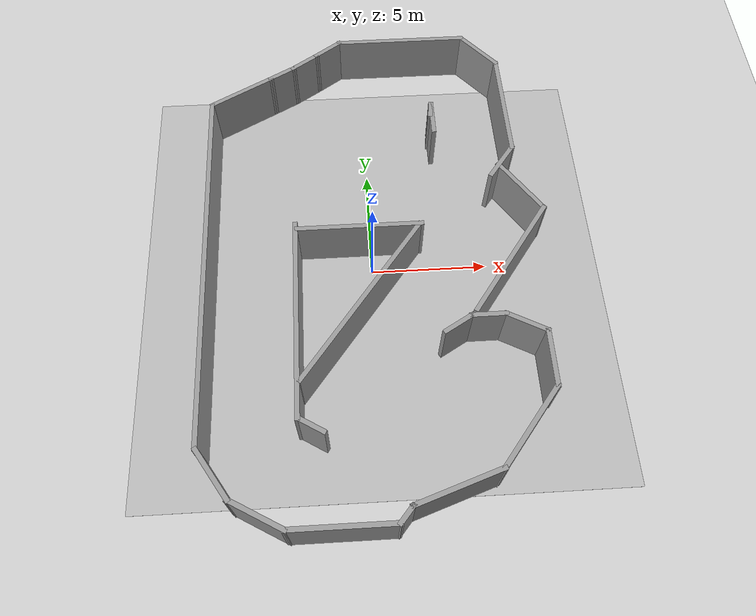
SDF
<sdf version="1.6">
 <world name="default">
  <light name="sun" type="directional">
   <pose>0 0 10 0 -0 0</pose>
   <diffuse>0.8 0.8 0.8 1</diffuse>
   <specular>0.1 0.1 0.1 1</specular>
   <attenuation>
    <range>1000</range>
    <constant>0.9</constant>
    <linear>0.01</linear>
    <quadratic>0.001</quadratic>
   </attenuation>
   <direction>-0.5 0.5 -1</direction>
  </light>
  <model name="ground_plane">
   <static>1</static>
   <link name="link">
    <collision name="collision">
     <geometry><plane><normal>0 0 1</normal><size>100 100</size></plane></geometry>
     <surface><friction><ode><mu>100</mu><mu2>50</mu2></ode></friction></surface>
    </collision>
    <visual name="visual">
     <cast_shadows>0</cast_shadows>
     <geometry><plane><normal>0 0 1</normal><size>100 100</size></plane></geometry>
     <material>
      <script><uri>file://media/materials/scripts/gazebo.material</uri><name>Gazebo/Grey</name></script>
     </material>
    </visual>
   </link>
  </model>
  <gravity>0 0 -9.8</gravity>
  <magnetic_field>6e-06 2.3e-05 -4.2e-05</magnetic_field>
  <atmosphere type="adiabatic"/>
  <physics name="default_physics" default="0" type="ode">
   <max_step_size>0.001</max_step_size>
   <real_time_factor>100</real_time_factor>
   <real_time_update_rate>0</real_time_update_rate>
  </physics>
  <scene><ambient>0.4 0.4 0.4 1</ambient><background>0.7 0.7 0.7 1</background><shadows>1</shadows></scene>
  <spherical_coordinates>
   <surface_model>EARTH_WGS84</surface_model>
   <latitude_deg>0</latitude_deg>
   <longitude_deg>0</longitude_deg>
   <elevation>0</elevation>
   <heading_deg>0</heading_deg>
  </spherical_coordinates>
  <model name="CircuitoMontmelo">
   <static>1</static>
   <link name="link">
    <collision name="collision"><geometry><box><size>20 20 0.01</size></box></geometry></collision>
    <visual name="visual">
     <cast_shadows>0</cast_shadows>
     <geometry><box><size>20 20 0.01</size></box></geometry>
     <material>
      <script>
       <uri>model://circuitoMontmelo/materials/scripts</uri>
       <uri>model://circuitoMontmelo/materials/textures</uri>
       <name>floor</name>
      </script>
     </material>
    </visual>
   </link>
   <pose>-0.004001 0.002868 0 0 -0 0</pose>
  </model>
  <model name="ParedesMontmelo">
   <link name="Wall_23">
    <pose>-4.62419 5.62975 0 0 -0 0.495133</pose>
    <velocity_decay><linear>0</linear><angular>0</angular></velocity_decay>
    <visual name="Wall_23_Visual">
     <pose>0 0 1.25 0 -0 0</pose>
     <geometry><box><size>3.24024 0.2 2.5</size></box></geometry>
     <material>
      <script><uri>file://media/materials/scripts/gazebo.material</uri><name>Gazebo/Grey</name></script>
      <ambient>0.3 0.3 0.3 1</ambient>
      <diffuse>0.7 0.7 0.7 1</diffuse>
      <specular>0.01 0.01 0.01 1</specular>
      <emissive>0 0 0 1</emissive>
     </material>
    </visual>
    <collision name="Wall_23_Collision">
     <pose>0 0 1.25 0 -0 0</pose>
     <geometry><box><size>3.24024 0.2 2.5</size></box></geometry>
     <surface>
      <friction>
       <ode><mu>1</mu><mu2>1</mu2><fdir1>0 0 0</fdir1><slip1>0</slip1><slip2>0</slip2></ode>
       <torsional>
        <coefficient>1</coefficient>
        <patch_radius>0</patch_radius>
        <surface_radius>0</surface_radius>
        <use_patch_radius>1</use_patch_radius>
        <ode><slip>0</slip></ode>
       </torsional>
      </friction>
      <bounce><restitution_coefficient>0</restitution_coefficient><threshold>1e+06</threshold></bounce>
      <contact>
       <collide_without_contact>0</collide_without_contact>
       <collide_without_contact_bitmask>1</collide_without_contact_bitmask>
       <collide_bitmask>1</collide_bitmask>
       <ode>
        <soft_cfm>0</soft_cfm>
        <soft_erp>0.2</soft_erp>
        <kp>1e+13</kp>
        <kd>1</kd>
        <max_vel>0.01</max_vel>
        <min_depth>0</min_depth>
       </ode>
       <bullet>
        <split_impulse>1</split_impulse>
        <split_impulse_penetration_threshold>-0.01</split_impulse_penetration_threshold>
        <soft_cfm>0</soft_cfm>
        <soft_erp>0.2</soft_erp>
        <kp>1e+13</kp>
        <kd>1</kd>
       </bullet>
      </contact>
     </surface>
    </collision>
   </link>
   <link name="Wall_24">
    <pose>-2.7516 6.6463 0 0 -0 0.502843</pose>
    <velocity_decay><linear>0</linear><angular>0</angular></velocity_decay>
    <visual name="Wall_24_Visual">
     <pose>0 0 1.25 0 -0 0</pose>
     <geometry><box><size>1.42122 0.2 2.5</size></box></geometry>
     <material>
      <script><uri>file://media/materials/scripts/gazebo.material</uri><name>Gazebo/Grey</name></script>
      <ambient>0.3 0.3 0.3 1</ambient>
      <diffuse>0.7 0.7 0.7 1</diffuse>
      <specular>0.01 0.01 0.01 1</specular>
      <emissive>0 0 0 1</emissive>
     </material>
    </visual>
    <collision name="Wall_24_Collision">
     <pose>0 0 1.25 0 -0 0</pose>
     <geometry><box><size>1.42122 0.2 2.5</size></box></geometry>
     <surface>
      <friction>
       <ode><mu>1</mu><mu2>1</mu2><fdir1>0 0 0</fdir1><slip1>0</slip1><slip2>0</slip2></ode>
       <torsional>
        <coefficient>1</coefficient>
        <patch_radius>0</patch_radius>
        <surface_radius>0</surface_radius>
        <use_patch_radius>1</use_patch_radius>
        <ode><slip>0</slip></ode>
       </torsional>
      </friction>
      <bounce><restitution_coefficient>0</restitution_coefficient><threshold>1e+06</threshold></bounce>
      <contact>
       <collide_without_contact>0</collide_without_contact>
       <collide_without_contact_bitmask>1</collide_without_contact_bitmask>
       <collide_bitmask>1</collide_bitmask>
       <ode>
        <soft_cfm>0</soft_cfm>
        <soft_erp>0.2</soft_erp>
        <kp>1e+13</kp>
        <kd>1</kd>
        <max_vel>0.01</max_vel>
        <min_depth>0</min_depth>
       </ode>
       <bullet>
        <split_impulse>1</split_impulse>
        <split_impulse_penetration_threshold>-0.01</split_impulse_penetration_threshold>
        <soft_cfm>0</soft_cfm>
        <soft_erp>0.2</soft_erp>
        <kp>1e+13</kp>
        <kd>1</kd>
       </bullet>
      </contact>
     </surface>
    </collision>
   </link>
   <link name="Wall_25">
    <pose>-1.6637 7.30616 0 0 -0 0.584242</pose>
    <velocity_decay><linear>0</linear><angular>0</angular></velocity_decay>
    <visual name="Wall_25_Visual">
     <pose>0 0 1.25 0 -0 0</pose>
     <geometry><box><size>1.52565 0.2 2.5</size></box></geometry>
     <material>
      <script><uri>file://media/materials/scripts/gazebo.material</uri><name>Gazebo/Grey</name></script>
      <ambient>0.3 0.3 0.3 1</ambient>
      <diffuse>0.7 0.7 0.7 1</diffuse>
      <specular>0.01 0.01 0.01 1</specular>
      <emissive>0 0 0 1</emissive>
     </material>
    </visual>
    <collision name="Wall_25_Collision">
     <pose>0 0 1.25 0 -0 0</pose>
     <geometry><box><size>1.52565 0.2 2.5</size></box></geometry>
     <surface>
      <friction>
       <ode><mu>1</mu><mu2>1</mu2><fdir1>0 0 0</fdir1><slip1>0</slip1><slip2>0</slip2></ode>
       <torsional>
        <coefficient>1</coefficient>
        <patch_radius>0</patch_radius>
        <surface_radius>0</surface_radius>
        <use_patch_radius>1</use_patch_radius>
        <ode><slip>0</slip></ode>
       </torsional>
      </friction>
      <bounce><restitution_coefficient>0</restitution_coefficient><threshold>1e+06</threshold></bounce>
      <contact>
       <collide_without_contact>0</collide_without_contact>
       <collide_without_contact_bitmask>1</collide_without_contact_bitmask>
       <collide_bitmask>1</collide_bitmask>
       <ode>
        <soft_cfm>0</soft_cfm>
        <soft_erp>0.2</soft_erp>
        <kp>1e+13</kp>
        <kd>1</kd>
        <max_vel>0.01</max_vel>
        <min_depth>0</min_depth>
       </ode>
       <bullet>
        <split_impulse>1</split_impulse>
        <split_impulse_penetration_threshold>-0.01</split_impulse_penetration_threshold>
        <soft_cfm>0</soft_cfm>
        <soft_erp>0.2</soft_erp>
        <kp>1e+13</kp>
        <kd>1</kd>
       </bullet>
      </contact>
     </surface>
    </collision>
   </link>
   <link name="Wall_26">
    <pose>-0.544373 8.05974 0 0 -0 0.600567</pose>
    <velocity_decay><linear>0</linear><angular>0</angular></velocity_decay>
    <visual name="Wall_26_Visual">
     <pose>0 0 1.25 0 -0 0</pose>
     <geometry><box><size>1.57316 0.2 2.5</size></box></geometry>
     <material>
      <script><uri>file://media/materials/scripts/gazebo.material</uri><name>Gazebo/Grey</name></script>
      <ambient>0.3 0.3 0.3 1</ambient>
      <diffuse>0.7 0.7 0.7 1</diffuse>
      <specular>0.01 0.01 0.01 1</specular>
      <emissive>0 0 0 1</emissive>
     </material>
    </visual>
    <collision name="Wall_26_Collision">
     <pose>0 0 1.25 0 -0 0</pose>
     <geometry><box><size>1.57316 0.2 2.5</size></box></geometry>
     <surface>
      <friction>
       <ode><mu>1</mu><mu2>1</mu2><fdir1>0 0 0</fdir1><slip1>0</slip1><slip2>0</slip2></ode>
       <torsional>
        <coefficient>1</coefficient>
        <patch_radius>0</patch_radius>
        <surface_radius>0</surface_radius>
        <use_patch_radius>1</use_patch_radius>
        <ode><slip>0</slip></ode>
       </torsional>
      </friction>
      <bounce><restitution_coefficient>0</restitution_coefficient><threshold>1e+06</threshold></bounce>
      <contact>
       <collide_without_contact>0</collide_without_contact>
       <collide_without_contact_bitmask>1</collide_without_contact_bitmask>
       <collide_bitmask>1</collide_bitmask>
       <ode>
        <soft_cfm>0</soft_cfm>
        <soft_erp>0.2</soft_erp>
        <kp>1e+13</kp>
        <kd>1</kd>
        <max_vel>0.01</max_vel>
        <min_depth>0</min_depth>
       </ode>
       <bullet>
        <split_impulse>1</split_impulse>
        <split_impulse_penetration_threshold>-0.01</split_impulse_penetration_threshold>
        <soft_cfm>0</soft_cfm>
        <soft_erp>0.2</soft_erp>
        <kp>1e+13</kp>
        <kd>1</kd>
       </bullet>
      </contact>
     </surface>
    </collision>
   </link>
   <link name="Wall_27">
    <pose>2.99386 8.44774 0 0 -0 0</pose>
    <velocity_decay><linear>0</linear><angular>0</angular></velocity_decay>
    <visual name="Wall_27_Visual">
     <pose>0 0 1.25 0 -0 0</pose>
     <geometry><box><size>6.14359 0.2 2.5</size></box></geometry>
     <material>
      <script><uri>file://media/materials/scripts/gazebo.material</uri><name>Gazebo/Grey</name></script>
      <ambient>0.3 0.3 0.3 1</ambient>
      <diffuse>0.7 0.7 0.7 1</diffuse>
      <specular>0.01 0.01 0.01 1</specular>
      <emissive>0 0 0 1</emissive>
     </material>
    </visual>
    <collision name="Wall_27_Collision">
     <pose>0 0 1.25 0 -0 0</pose>
     <geometry><box><size>6.14359 0.2 2.5</size></box></geometry>
     <surface>
      <friction>
       <ode><mu>1</mu><mu2>1</mu2><fdir1>0 0 0</fdir1><slip1>0</slip1><slip2>0</slip2></ode>
       <torsional>
        <coefficient>1</coefficient>
        <patch_radius>0</patch_radius>
        <surface_radius>0</surface_radius>
        <use_patch_radius>1</use_patch_radius>
        <ode><slip>0</slip></ode>
       </torsional>
      </friction>
      <bounce><restitution_coefficient>0</restitution_coefficient><threshold>1e+06</threshold></bounce>
      <contact>
       <collide_without_contact>0</collide_without_contact>
       <collide_without_contact_bitmask>1</collide_without_contact_bitmask>
       <collide_bitmask>1</collide_bitmask>
       <ode>
        <soft_cfm>0</soft_cfm>
        <soft_erp>0.2</soft_erp>
        <kp>1e+13</kp>
        <kd>1</kd>
        <max_vel>0.01</max_vel>
        <min_depth>0</min_depth>
       </ode>
       <bullet>
        <split_impulse>1</split_impulse>
        <split_impulse_penetration_threshold>-0.01</split_impulse_penetration_threshold>
        <soft_cfm>0</soft_cfm>
        <soft_erp>0.2</soft_erp>
        <kp>1e+13</kp>
        <kd>1</kd>
       </bullet>
      </contact>
     </surface>
    </collision>
   </link>
   <link name="Wall_29">
    <pose>6.74399 7.56327 0 0 0 -0.855053</pose>
    <velocity_decay><linear>0</linear><angular>0</angular></velocity_decay>
    <visual name="Wall_29_Visual">
     <pose>0 0 1.25 0 -0 0</pose>
     <geometry><box><size>2.35664 0.2 2.5</size></box></geometry>
     <material>
      <script><uri>file://media/materials/scripts/gazebo.material</uri><name>Gazebo/Grey</name></script>
      <ambient>0.3 0.3 0.3 1</ambient>
      <diffuse>0.7 0.7 0.7 1</diffuse>
      <specular>0.01 0.01 0.01 1</specular>
      <emissive>0 0 0 1</emissive>
     </material>
    </visual>
    <collision name="Wall_29_Collision">
     <pose>0 0 1.25 0 -0 0</pose>
     <geometry><box><size>2.35664 0.2 2.5</size></box></geometry>
     <surface>
      <friction>
       <ode><mu>1</mu><mu2>1</mu2><fdir1>0 0 0</fdir1><slip1>0</slip1><slip2>0</slip2></ode>
       <torsional>
        <coefficient>1</coefficient>
        <patch_radius>0</patch_radius>
        <surface_radius>0</surface_radius>
        <use_patch_radius>1</use_patch_radius>
        <ode><slip>0</slip></ode>
       </torsional>
      </friction>
      <bounce><restitution_coefficient>0</restitution_coefficient><threshold>1e+06</threshold></bounce>
      <contact>
       <collide_without_contact>0</collide_without_contact>
       <collide_without_contact_bitmask>1</collide_without_contact_bitmask>
       <collide_bitmask>1</collide_bitmask>
       <ode>
        <soft_cfm>0</soft_cfm>
        <soft_erp>0.2</soft_erp>
        <kp>1e+13</kp>
        <kd>1</kd>
        <max_vel>0.01</max_vel>
        <min_depth>0</min_depth>
       </ode>
       <bullet>
        <split_impulse>1</split_impulse>
        <split_impulse_penetration_threshold>-0.01</split_impulse_penetration_threshold>
        <soft_cfm>0</soft_cfm>
        <soft_erp>0.2</soft_erp>
        <kp>1e+13</kp>
        <kd>1</kd>
       </bullet>
      </contact>
     </surface>
    </collision>
   </link>
   <link name="Wall_30">
    <pose>7.49224 4.243 0 0 0 -1.55457</pose>
    <velocity_decay><linear>0</linear><angular>0</angular></velocity_decay>
    <visual name="Wall_30_Visual">
     <pose>0 0 1.25 0 -0 0</pose>
     <geometry><box><size>5.2138 0.2 2.5</size></box></geometry>
     <material>
      <script><uri>file://media/materials/scripts/gazebo.material</uri><name>Gazebo/Grey</name></script>
      <ambient>0.3 0.3 0.3 1</ambient>
      <diffuse>0.7 0.7 0.7 1</diffuse>
      <specular>0.01 0.01 0.01 1</specular>
      <emissive>0 0 0 1</emissive>
     </material>
    </visual>
    <collision name="Wall_30_Collision">
     <pose>0 0 1.25 0 -0 0</pose>
     <geometry><box><size>5.2138 0.2 2.5</size></box></geometry>
     <surface>
      <friction>
       <ode><mu>1</mu><mu2>1</mu2><fdir1>0 0 0</fdir1><slip1>0</slip1><slip2>0</slip2></ode>
       <torsional>
        <coefficient>1</coefficient>
        <patch_radius>0</patch_radius>
        <surface_radius>0</surface_radius>
        <use_patch_radius>1</use_patch_radius>
        <ode><slip>0</slip></ode>
       </torsional>
      </friction>
      <bounce><restitution_coefficient>0</restitution_coefficient><threshold>1e+06</threshold></bounce>
      <contact>
       <collide_without_contact>0</collide_without_contact>
       <collide_without_contact_bitmask>1</collide_without_contact_bitmask>
       <collide_bitmask>1</collide_bitmask>
       <ode>
        <soft_cfm>0</soft_cfm>
        <soft_erp>0.2</soft_erp>
        <kp>1e+13</kp>
        <kd>1</kd>
        <max_vel>0.01</max_vel>
        <min_depth>0</min_depth>
       </ode>
       <bullet>
        <split_impulse>1</split_impulse>
        <split_impulse_penetration_threshold>-0.01</split_impulse_penetration_threshold>
        <soft_cfm>0</soft_cfm>
        <soft_erp>0.2</soft_erp>
        <kp>1e+13</kp>
        <kd>1</kd>
       </bullet>
      </contact>
     </surface>
    </collision>
   </link>
   <link name="Wall_31">
    <pose>6.98355 1.02047 0 0 0 -2.2253</pose>
    <velocity_decay><linear>0</linear><angular>0</angular></velocity_decay>
    <visual name="Wall_31_Visual">
     <pose>0 0 1.25 0 -0 0</pose>
     <geometry><box><size>2.00489 0.2 2.5</size></box></geometry>
     <material>
      <script><uri>file://media/materials/scripts/gazebo.material</uri><name>Gazebo/Grey</name></script>
      <ambient>0.3 0.3 0.3 1</ambient>
      <diffuse>0.7 0.7 0.7 1</diffuse>
      <specular>0.01 0.01 0.01 1</specular>
      <emissive>0 0 0 1</emissive>
     </material>
    </visual>
    <collision name="Wall_31_Collision">
     <pose>0 0 1.25 0 -0 0</pose>
     <geometry><box><size>2.00489 0.2 2.5</size></box></geometry>
     <surface>
      <friction>
       <ode><mu>1</mu><mu2>1</mu2><fdir1>0 0 0</fdir1><slip1>0</slip1><slip2>0</slip2></ode>
       <torsional>
        <coefficient>1</coefficient>
        <patch_radius>0</patch_radius>
        <surface_radius>0</surface_radius>
        <use_patch_radius>1</use_patch_radius>
        <ode><slip>0</slip></ode>
       </torsional>
      </friction>
      <bounce><restitution_coefficient>0</restitution_coefficient><threshold>1e+06</threshold></bounce>
      <contact>
       <collide_without_contact>0</collide_without_contact>
       <collide_without_contact_bitmask>1</collide_without_contact_bitmask>
       <collide_bitmask>1</collide_bitmask>
       <ode>
        <soft_cfm>0</soft_cfm>
        <soft_erp>0.2</soft_erp>
        <kp>1e+13</kp>
        <kd>1</kd>
        <max_vel>0.01</max_vel>
        <min_depth>0</min_depth>
       </ode>
       <bullet>
        <split_impulse>1</split_impulse>
        <split_impulse_penetration_threshold>-0.01</split_impulse_penetration_threshold>
        <soft_cfm>0</soft_cfm>
        <soft_erp>0.2</soft_erp>
        <kp>1e+13</kp>
        <kd>1</kd>
       </bullet>
      </contact>
     </surface>
    </collision>
   </link>
   <link name="Wall_33">
    <pose>-5.34753 -12.147 0 0 0 -0.992894</pose>
    <velocity_decay><linear>0</linear><angular>0</angular></velocity_decay>
    <visual name="Wall_33_Visual">
     <pose>0 0 1.25 0 -0 0</pose>
     <geometry><box><size>2.43436 0.2 2.5</size></box></geometry>
     <material>
      <script><uri>file://media/materials/scripts/gazebo.material</uri><name>Gazebo/Grey</name></script>
      <ambient>0.3 0.3 0.3 1</ambient>
      <diffuse>0.7 0.7 0.7 1</diffuse>
      <specular>0.01 0.01 0.01 1</specular>
      <emissive>0 0 0 1</emissive>
     </material>
    </visual>
    <collision name="Wall_33_Collision">
     <pose>0 0 1.25 0 -0 0</pose>
     <geometry><box><size>2.43436 0.2 2.5</size></box></geometry>
     <surface>
      <friction>
       <ode><mu>1</mu><mu2>1</mu2><fdir1>0 0 0</fdir1><slip1>0</slip1><slip2>0</slip2></ode>
       <torsional>
        <coefficient>1</coefficient>
        <patch_radius>0</patch_radius>
        <surface_radius>0</surface_radius>
        <use_patch_radius>1</use_patch_radius>
        <ode><slip>0</slip></ode>
       </torsional>
      </friction>
      <bounce><restitution_coefficient>0</restitution_coefficient><threshold>1e+06</threshold></bounce>
      <contact>
       <collide_without_contact>0</collide_without_contact>
       <collide_without_contact_bitmask>1</collide_without_contact_bitmask>
       <collide_bitmask>1</collide_bitmask>
       <ode>
        <soft_cfm>0</soft_cfm>
        <soft_erp>0.2</soft_erp>
        <kp>1e+13</kp>
        <kd>1</kd>
        <max_vel>0.01</max_vel>
        <min_depth>0</min_depth>
       </ode>
       <bullet>
        <split_impulse>1</split_impulse>
        <split_impulse_penetration_threshold>-0.01</split_impulse_penetration_threshold>
        <soft_cfm>0</soft_cfm>
        <soft_erp>0.2</soft_erp>
        <kp>1e+13</kp>
        <kd>1</kd>
       </bullet>
      </contact>
     </surface>
    </collision>
   </link>
   <link name="Wall_34">
    <pose>-3.72012 -13.6524 0 0 0 -0.510488</pose>
    <velocity_decay><linear>0</linear><angular>0</angular></velocity_decay>
    <visual name="Wall_34_Visual">
     <pose>0 0 1.25 0 -0 0</pose>
     <geometry><box><size>2.53152 0.2 2.5</size></box></geometry>
     <material>
      <script><uri>file://media/materials/scripts/gazebo.material</uri><name>Gazebo/Grey</name></script>
      <ambient>0.3 0.3 0.3 1</ambient>
      <diffuse>0.7 0.7 0.7 1</diffuse>
      <specular>0.01 0.01 0.01 1</specular>
      <emissive>0 0 0 1</emissive>
     </material>
    </visual>
    <collision name="Wall_34_Collision">
     <pose>0 0 1.25 0 -0 0</pose>
     <geometry><box><size>2.53152 0.2 2.5</size></box></geometry>
     <surface>
      <friction>
       <ode><mu>1</mu><mu2>1</mu2><fdir1>0 0 0</fdir1><slip1>0</slip1><slip2>0</slip2></ode>
       <torsional>
        <coefficient>1</coefficient>
        <patch_radius>0</patch_radius>
        <surface_radius>0</surface_radius>
        <use_patch_radius>1</use_patch_radius>
        <ode><slip>0</slip></ode>
       </torsional>
      </friction>
      <bounce><restitution_coefficient>0</restitution_coefficient><threshold>1e+06</threshold></bounce>
      <contact>
       <collide_without_contact>0</collide_without_contact>
       <collide_without_contact_bitmask>1</collide_without_contact_bitmask>
       <collide_bitmask>1</collide_bitmask>
       <ode>
        <soft_cfm>0</soft_cfm>
        <soft_erp>0.2</soft_erp>
        <kp>1e+13</kp>
        <kd>1</kd>
        <max_vel>0.01</max_vel>
        <min_depth>0</min_depth>
       </ode>
       <bullet>
        <split_impulse>1</split_impulse>
        <split_impulse_penetration_threshold>-0.01</split_impulse_penetration_threshold>
        <soft_cfm>0</soft_cfm>
        <soft_erp>0.2</soft_erp>
        <kp>1e+13</kp>
        <kd>1</kd>
       </bullet>
      </contact>
     </surface>
    </collision>
   </link>
   <link name="Wall_35">
    <pose>-0.668718 -14.222 0 0 -0 0</pose>
    <velocity_decay><linear>0</linear><angular>0</angular></velocity_decay>
    <visual name="Wall_35_Visual">
     <pose>0 0 1.25 0 -0 0</pose>
     <geometry><box><size>4.26853 0.2 2.5</size></box></geometry>
     <material>
      <script><uri>file://media/materials/scripts/gazebo.material</uri><name>Gazebo/Grey</name></script>
      <ambient>0.3 0.3 0.3 1</ambient>
      <diffuse>0.7 0.7 0.7 1</diffuse>
      <specular>0.01 0.01 0.01 1</specular>
      <emissive>0 0 0 1</emissive>
     </material>
    </visual>
    <collision name="Wall_35_Collision">
     <pose>0 0 1.25 0 -0 0</pose>
     <geometry><box><size>4.26853 0.2 2.5</size></box></geometry>
     <surface>
      <friction>
       <ode><mu>1</mu><mu2>1</mu2><fdir1>0 0 0</fdir1><slip1>0</slip1><slip2>0</slip2></ode>
       <torsional>
        <coefficient>1</coefficient>
        <patch_radius>0</patch_radius>
        <surface_radius>0</surface_radius>
        <use_patch_radius>1</use_patch_radius>
        <ode><slip>0</slip></ode>
       </torsional>
      </friction>
      <bounce><restitution_coefficient>0</restitution_coefficient><threshold>1e+06</threshold></bounce>
      <contact>
       <collide_without_contact>0</collide_without_contact>
       <collide_without_contact_bitmask>1</collide_without_contact_bitmask>
       <collide_bitmask>1</collide_bitmask>
       <ode>
        <soft_cfm>0</soft_cfm>
        <soft_erp>0.2</soft_erp>
        <kp>1e+13</kp>
        <kd>1</kd>
        <max_vel>0.01</max_vel>
        <min_depth>0</min_depth>
       </ode>
       <bullet>
        <split_impulse>1</split_impulse>
        <split_impulse_penetration_threshold>-0.01</split_impulse_penetration_threshold>
        <soft_cfm>0</soft_cfm>
        <soft_erp>0.2</soft_erp>
        <kp>1e+13</kp>
        <kd>1</kd>
       </bullet>
      </contact>
     </surface>
    </collision>
   </link>
   <link name="Wall_36">
    <pose>1.60966 -13.9372 0 0 -0 0.86217</pose>
    <velocity_decay><linear>0</linear><angular>0</angular></velocity_decay>
    <visual name="Wall_36_Visual">
     <pose>0 0 1.25 0 -0 0</pose>
     <geometry><box><size>0.9502 0.2 2.5</size></box></geometry>
     <material>
      <script><uri>file://media/materials/scripts/gazebo.material</uri><name>Gazebo/Grey</name></script>
      <ambient>0.3 0.3 0.3 1</ambient>
      <diffuse>0.7 0.7 0.7 1</diffuse>
      <specular>0.01 0.01 0.01 1</specular>
      <emissive>0 0 0 1</emissive>
     </material>
    </visual>
    <collision name="Wall_36_Collision">
     <pose>0 0 1.25 0 -0 0</pose>
     <geometry><box><size>0.9502 0.2 2.5</size></box></geometry>
     <surface>
      <friction>
       <ode><mu>1</mu><mu2>1</mu2><fdir1>0 0 0</fdir1><slip1>0</slip1><slip2>0</slip2></ode>
       <torsional>
        <coefficient>1</coefficient>
        <patch_radius>0</patch_radius>
        <surface_radius>0</surface_radius>
        <use_patch_radius>1</use_patch_radius>
        <ode><slip>0</slip></ode>
       </torsional>
      </friction>
      <bounce><restitution_coefficient>0</restitution_coefficient><threshold>1e+06</threshold></bounce>
      <contact>
       <collide_without_contact>0</collide_without_contact>
       <collide_without_contact_bitmask>1</collide_without_contact_bitmask>
       <collide_bitmask>1</collide_bitmask>
       <ode>
        <soft_cfm>0</soft_cfm>
        <soft_erp>0.2</soft_erp>
        <kp>1e+13</kp>
        <kd>1</kd>
        <max_vel>0.01</max_vel>
        <min_depth>0</min_depth>
       </ode>
       <bullet>
        <split_impulse>1</split_impulse>
        <split_impulse_penetration_threshold>-0.01</split_impulse_penetration_threshold>
        <soft_cfm>0</soft_cfm>
        <soft_erp>0.2</soft_erp>
        <kp>1e+13</kp>
        <kd>1</kd>
       </bullet>
      </contact>
     </surface>
    </collision>
   </link>
   <link name="Wall_37">
    <pose>3.56255 -13.0828 0 0 -0 0.321751</pose>
    <velocity_decay><linear>0</linear><angular>0</angular></velocity_decay>
    <visual name="Wall_37_Visual">
     <pose>0 0 1.25 0 -0 0</pose>
     <geometry><box><size>3.80243 0.2 2.5</size></box></geometry>
     <material>
      <script><uri>file://media/materials/scripts/gazebo.material</uri><name>Gazebo/Grey</name></script>
      <ambient>0.3 0.3 0.3 1</ambient>
      <diffuse>0.7 0.7 0.7 1</diffuse>
      <specular>0.01 0.01 0.01 1</specular>
      <emissive>0 0 0 1</emissive>
     </material>
    </visual>
    <collision name="Wall_37_Collision">
     <pose>0 0 1.25 0 -0 0</pose>
     <geometry><box><size>3.80243 0.2 2.5</size></box></geometry>
     <surface>
      <friction>
       <ode><mu>1</mu><mu2>1</mu2><fdir1>0 0 0</fdir1><slip1>0</slip1><slip2>0</slip2></ode>
       <torsional>
        <coefficient>1</coefficient>
        <patch_radius>0</patch_radius>
        <surface_radius>0</surface_radius>
        <use_patch_radius>1</use_patch_radius>
        <ode><slip>0</slip></ode>
       </torsional>
      </friction>
      <bounce><restitution_coefficient>0</restitution_coefficient><threshold>1e+06</threshold></bounce>
      <contact>
       <collide_without_contact>0</collide_without_contact>
       <collide_without_contact_bitmask>1</collide_without_contact_bitmask>
       <collide_bitmask>1</collide_bitmask>
       <ode>
        <soft_cfm>0</soft_cfm>
        <soft_erp>0.2</soft_erp>
        <kp>1e+13</kp>
        <kd>1</kd>
        <max_vel>0.01</max_vel>
        <min_depth>0</min_depth>
       </ode>
       <bullet>
        <split_impulse>1</split_impulse>
        <split_impulse_penetration_threshold>-0.01</split_impulse_penetration_threshold>
        <soft_cfm>0</soft_cfm>
        <soft_erp>0.2</soft_erp>
        <kp>1e+13</kp>
        <kd>1</kd>
       </bullet>
      </contact>
     </surface>
    </collision>
   </link>
   <link name="Wall_38">
    <pose>6.4919 -11.0078 0 0 -0 0.889498</pose>
    <velocity_decay><linear>0</linear><angular>0</angular></velocity_decay>
    <visual name="Wall_38_Visual">
     <pose>0 0 1.25 0 -0 0</pose>
     <geometry><box><size>4.07601 0.2 2.5</size></box></geometry>
     <material>
      <script><uri>file://media/materials/scripts/gazebo.material</uri><name>Gazebo/Grey</name></script>
      <ambient>0.3 0.3 0.3 1</ambient>
      <diffuse>0.7 0.7 0.7 1</diffuse>
      <specular>0.01 0.01 0.01 1</specular>
      <emissive>0 0 0 1</emissive>
     </material>
    </visual>
    <collision name="Wall_38_Collision">
     <pose>0 0 1.25 0 -0 0</pose>
     <geometry><box><size>4.07601 0.2 2.5</size></box></geometry>
     <surface>
      <friction>
       <ode><mu>1</mu><mu2>1</mu2><fdir1>0 0 0</fdir1><slip1>0</slip1><slip2>0</slip2></ode>
       <torsional>
        <coefficient>1</coefficient>
        <patch_radius>0</patch_radius>
        <surface_radius>0</surface_radius>
        <use_patch_radius>1</use_patch_radius>
        <ode><slip>0</slip></ode>
       </torsional>
      </friction>
      <bounce><restitution_coefficient>0</restitution_coefficient><threshold>1e+06</threshold></bounce>
      <contact>
       <collide_without_contact>0</collide_without_contact>
       <collide_without_contact_bitmask>1</collide_without_contact_bitmask>
       <collide_bitmask>1</collide_bitmask>
       <ode>
        <soft_cfm>0</soft_cfm>
        <soft_erp>0.2</soft_erp>
        <kp>1e+13</kp>
        <kd>1</kd>
        <max_vel>0.01</max_vel>
        <min_depth>0</min_depth>
       </ode>
       <bullet>
        <split_impulse>1</split_impulse>
        <split_impulse_penetration_threshold>-0.01</split_impulse_penetration_threshold>
        <soft_cfm>0</soft_cfm>
        <soft_erp>0.2</soft_erp>
        <kp>1e+13</kp>
        <kd>1</kd>
       </bullet>
      </contact>
     </surface>
    </collision>
   </link>
   <link name="Wall_39">
    <pose>7.71246 -8.36327 0 0 -0 1.5708</pose>
    <velocity_decay><linear>0</linear><angular>0</angular></velocity_decay>
    <visual name="Wall_39_Visual">
     <pose>0 0 1.25 0 -0 0</pose>
     <geometry><box><size>2.47838 0.2 2.5</size></box></geometry>
     <material>
      <script><uri>file://media/materials/scripts/gazebo.material</uri><name>Gazebo/Grey</name></script>
      <ambient>0.3 0.3 0.3 1</ambient>
      <diffuse>0.7 0.7 0.7 1</diffuse>
      <specular>0.01 0.01 0.01 1</specular>
      <emissive>0 0 0 1</emissive>
     </material>
    </visual>
    <collision name="Wall_39_Collision">
     <pose>0 0 1.25 0 -0 0</pose>
     <geometry><box><size>2.47838 0.2 2.5</size></box></geometry>
     <surface>
      <friction>
       <ode><mu>1</mu><mu2>1</mu2><fdir1>0 0 0</fdir1><slip1>0</slip1><slip2>0</slip2></ode>
       <torsional>
        <coefficient>1</coefficient>
        <patch_radius>0</patch_radius>
        <surface_radius>0</surface_radius>
        <use_patch_radius>1</use_patch_radius>
        <ode><slip>0</slip></ode>
       </torsional>
      </friction>
      <bounce><restitution_coefficient>0</restitution_coefficient><threshold>1e+06</threshold></bounce>
      <contact>
       <collide_without_contact>0</collide_without_contact>
       <collide_without_contact_bitmask>1</collide_without_contact_bitmask>
       <collide_bitmask>1</collide_bitmask>
       <ode>
        <soft_cfm>0</soft_cfm>
        <soft_erp>0.2</soft_erp>
        <kp>1e+13</kp>
        <kd>1</kd>
        <max_vel>0.01</max_vel>
        <min_depth>0</min_depth>
       </ode>
       <bullet>
        <split_impulse>1</split_impulse>
        <split_impulse_penetration_threshold>-0.01</split_impulse_penetration_threshold>
        <soft_cfm>0</soft_cfm>
        <soft_erp>0.2</soft_erp>
        <kp>1e+13</kp>
        <kd>1</kd>
       </bullet>
      </contact>
     </surface>
    </collision>
   </link>
   <link name="Wall_40">
    <pose>6.93943 -6.81722 0 0 -0 2.65712</pose>
    <velocity_decay><linear>0</linear><angular>0</angular></velocity_decay>
    <visual name="Wall_40_Visual">
     <pose>0 0 1.25 0 -0 0</pose>
     <geometry><box><size>1.9471 0.2 2.5</size></box></geometry>
     <material>
      <script><uri>file://media/materials/scripts/gazebo.material</uri><name>Gazebo/Grey</name></script>
      <ambient>0.3 0.3 0.3 1</ambient>
      <diffuse>0.7 0.7 0.7 1</diffuse>
      <specular>0.01 0.01 0.01 1</specular>
      <emissive>0 0 0 1</emissive>
     </material>
    </visual>
    <collision name="Wall_40_Collision">
     <pose>0 0 1.25 0 -0 0</pose>
     <geometry><box><size>1.9471 0.2 2.5</size></box></geometry>
     <surface>
      <friction>
       <ode><mu>1</mu><mu2>1</mu2><fdir1>0 0 0</fdir1><slip1>0</slip1><slip2>0</slip2></ode>
       <torsional>
        <coefficient>1</coefficient>
        <patch_radius>0</patch_radius>
        <surface_radius>0</surface_radius>
        <use_patch_radius>1</use_patch_radius>
        <ode><slip>0</slip></ode>
       </torsional>
      </friction>
      <bounce><restitution_coefficient>0</restitution_coefficient><threshold>1e+06</threshold></bounce>
      <contact>
       <collide_without_contact>0</collide_without_contact>
       <collide_without_contact_bitmask>1</collide_without_contact_bitmask>
       <collide_bitmask>1</collide_bitmask>
       <ode>
        <soft_cfm>0</soft_cfm>
        <soft_erp>0.2</soft_erp>
        <kp>1e+13</kp>
        <kd>1</kd>
        <max_vel>0.01</max_vel>
        <min_depth>0</min_depth>
       </ode>
       <bullet>
        <split_impulse>1</split_impulse>
        <split_impulse_penetration_threshold>-0.01</split_impulse_penetration_threshold>
        <soft_cfm>0</soft_cfm>
        <soft_erp>0.2</soft_erp>
        <kp>1e+13</kp>
        <kd>1</kd>
       </bullet>
      </contact>
     </surface>
    </collision>
   </link>
   <link name="Wall_41">
    <pose>5.47476 -6.41037 0 0 -0 3.14159</pose>
    <velocity_decay><linear>0</linear><angular>0</angular></velocity_decay>
    <visual name="Wall_41_Visual">
     <pose>0 0 1.25 0 -0 0</pose>
     <geometry><box><size>1.5833 0.2 2.5</size></box></geometry>
     <material>
      <script><uri>file://media/materials/scripts/gazebo.material</uri><name>Gazebo/Grey</name></script>
      <ambient>0.3 0.3 0.3 1</ambient>
      <diffuse>0.7 0.7 0.7 1</diffuse>
      <specular>0.01 0.01 0.01 1</specular>
      <emissive>0 0 0 1</emissive>
     </material>
    </visual>
    <collision name="Wall_41_Collision">
     <pose>0 0 1.25 0 -0 0</pose>
     <geometry><box><size>1.5833 0.2 2.5</size></box></geometry>
     <surface>
      <friction>
       <ode><mu>1</mu><mu2>1</mu2><fdir1>0 0 0</fdir1><slip1>0</slip1><slip2>0</slip2></ode>
       <torsional>
        <coefficient>1</coefficient>
        <patch_radius>0</patch_radius>
        <surface_radius>0</surface_radius>
        <use_patch_radius>1</use_patch_radius>
        <ode><slip>0</slip></ode>
       </torsional>
      </friction>
      <bounce><restitution_coefficient>0</restitution_coefficient><threshold>1e+06</threshold></bounce>
      <contact>
       <collide_without_contact>0</collide_without_contact>
       <collide_without_contact_bitmask>1</collide_without_contact_bitmask>
       <collide_bitmask>1</collide_bitmask>
       <ode>
        <soft_cfm>0</soft_cfm>
        <soft_erp>0.2</soft_erp>
        <kp>1e+13</kp>
        <kd>1</kd>
        <max_vel>0.01</max_vel>
        <min_depth>0</min_depth>
       </ode>
       <bullet>
        <split_impulse>1</split_impulse>
        <split_impulse_penetration_threshold>-0.01</split_impulse_penetration_threshold>
        <soft_cfm>0</soft_cfm>
        <soft_erp>0.2</soft_erp>
        <kp>1e+13</kp>
        <kd>1</kd>
       </bullet>
      </contact>
     </surface>
    </collision>
   </link>
   <link name="Wall_42">
    <pose>4.23161 -6.72878 0 0 0 -2.61799</pose>
    <velocity_decay><linear>0</linear><angular>0</angular></velocity_decay>
    <visual name="Wall_42_Visual">
     <pose>0 0 1.25 0 -0 0</pose>
     <geometry><box><size>1.47365 0.2 2.5</size></box></geometry>
     <material>
      <script><uri>file://media/materials/scripts/gazebo.material</uri><name>Gazebo/Grey</name></script>
      <ambient>0.3 0.3 0.3 1</ambient>
      <diffuse>0.7 0.7 0.7 1</diffuse>
      <specular>0.01 0.01 0.01 1</specular>
      <emissive>0 0 0 1</emissive>
     </material>
    </visual>
    <collision name="Wall_42_Collision">
     <pose>0 0 1.25 0 -0 0</pose>
     <geometry><box><size>1.47365 0.2 2.5</size></box></geometry>
     <surface>
      <friction>
       <ode><mu>1</mu><mu2>1</mu2><fdir1>0 0 0</fdir1><slip1>0</slip1><slip2>0</slip2></ode>
       <torsional>
        <coefficient>1</coefficient>
        <patch_radius>0</patch_radius>
        <surface_radius>0</surface_radius>
        <use_patch_radius>1</use_patch_radius>
        <ode><slip>0</slip></ode>
       </torsional>
      </friction>
      <bounce><restitution_coefficient>0</restitution_coefficient><threshold>1e+06</threshold></bounce>
      <contact>
       <collide_without_contact>0</collide_without_contact>
       <collide_without_contact_bitmask>1</collide_without_contact_bitmask>
       <collide_bitmask>1</collide_bitmask>
       <ode>
        <soft_cfm>0</soft_cfm>
        <soft_erp>0.2</soft_erp>
        <kp>1e+13</kp>
        <kd>1</kd>
        <max_vel>0.01</max_vel>
        <min_depth>0</min_depth>
       </ode>
       <bullet>
        <split_impulse>1</split_impulse>
        <split_impulse_penetration_threshold>-0.01</split_impulse_penetration_threshold>
        <soft_cfm>0</soft_cfm>
        <soft_erp>0.2</soft_erp>
        <kp>1e+13</kp>
        <kd>1</kd>
       </bullet>
      </contact>
     </surface>
    </collision>
   </link>
   <link name="Wall_44">
    <pose>6.73601 -3.8472 0 0 -0 0.93577</pose>
    <velocity_decay><linear>0</linear><angular>0</angular></velocity_decay>
    <visual name="Wall_44_Visual">
     <pose>0 0 1.25 0 -0 0</pose>
     <geometry><box><size>5.96125 0.2 2.5</size></box></geometry>
     <material>
      <script><uri>file://media/materials/scripts/gazebo.material</uri><name>Gazebo/Grey</name></script>
      <ambient>0.3 0.3 0.3 1</ambient>
      <diffuse>0.7 0.7 0.7 1</diffuse>
      <specular>0.01 0.01 0.01 1</specular>
      <emissive>0 0 0 1</emissive>
     </material>
    </visual>
    <collision name="Wall_44_Collision">
     <pose>0 0 1.25 0 -0 0</pose>
     <geometry><box><size>5.96125 0.2 2.5</size></box></geometry>
     <surface>
      <friction>
       <ode><mu>1</mu><mu2>1</mu2><fdir1>0 0 0</fdir1><slip1>0</slip1><slip2>0</slip2></ode>
       <torsional>
        <coefficient>1</coefficient>
        <patch_radius>0</patch_radius>
        <surface_radius>0</surface_radius>
        <use_patch_radius>1</use_patch_radius>
        <ode><slip>0</slip></ode>
       </torsional>
      </friction>
      <bounce><restitution_coefficient>0</restitution_coefficient><threshold>1e+06</threshold></bounce>
      <contact>
       <collide_without_contact>0</collide_without_contact>
       <collide_without_contact_bitmask>1</collide_without_contact_bitmask>
       <collide_bitmask>1</collide_bitmask>
       <ode>
        <soft_cfm>0</soft_cfm>
        <soft_erp>0.2</soft_erp>
        <kp>1e+13</kp>
        <kd>1</kd>
        <max_vel>0.01</max_vel>
        <min_depth>0</min_depth>
       </ode>
       <bullet>
        <split_impulse>1</split_impulse>
        <split_impulse_penetration_threshold>-0.01</split_impulse_penetration_threshold>
        <soft_cfm>0</soft_cfm>
        <soft_erp>0.2</soft_erp>
        <kp>1e+13</kp>
        <kd>1</kd>
       </bullet>
      </contact>
     </surface>
    </collision>
   </link>
   <link name="Wall_45">
    <pose>7.63108 -0.34826 0 0 -0 2.17455</pose>
    <velocity_decay><linear>0</linear><angular>0</angular></velocity_decay>
    <visual name="Wall_45_Visual">
     <pose>0 0 1.25 0 -0 0</pose>
     <geometry><box><size>3.06651 0.2 2.5</size></box></geometry>
     <material>
      <script><uri>file://media/materials/scripts/gazebo.material</uri><name>Gazebo/Grey</name></script>
      <ambient>0.3 0.3 0.3 1</ambient>
      <diffuse>0.7 0.7 0.7 1</diffuse>
      <specular>0.01 0.01 0.01 1</specular>
      <emissive>0 0 0 1</emissive>
     </material>
    </visual>
    <collision name="Wall_45_Collision">
     <pose>0 0 1.25 0 -0 0</pose>
     <geometry><box><size>3.06651 0.2 2.5</size></box></geometry>
     <surface>
      <friction>
       <ode><mu>1</mu><mu2>1</mu2><fdir1>0 0 0</fdir1><slip1>0</slip1><slip2>0</slip2></ode>
       <torsional>
        <coefficient>1</coefficient>
        <patch_radius>0</patch_radius>
        <surface_radius>0</surface_radius>
        <use_patch_radius>1</use_patch_radius>
        <ode><slip>0</slip></ode>
       </torsional>
      </friction>
      <bounce><restitution_coefficient>0</restitution_coefficient><threshold>1e+06</threshold></bounce>
      <contact>
       <collide_without_contact>0</collide_without_contact>
       <collide_without_contact_bitmask>1</collide_without_contact_bitmask>
       <collide_bitmask>1</collide_bitmask>
       <ode>
        <soft_cfm>0</soft_cfm>
        <soft_erp>0.2</soft_erp>
        <kp>1e+13</kp>
        <kd>1</kd>
        <max_vel>0.01</max_vel>
        <min_depth>0</min_depth>
       </ode>
       <bullet>
        <split_impulse>1</split_impulse>
        <split_impulse_penetration_threshold>-0.01</split_impulse_penetration_threshold>
        <soft_cfm>0</soft_cfm>
        <soft_erp>0.2</soft_erp>
        <kp>1e+13</kp>
        <kd>1</kd>
       </bullet>
      </contact>
     </surface>
    </collision>
   </link>
   <link name="Wall_47">
    <pose>-2.21476 -6.00697 0 0 -0 1.5708</pose>
    <velocity_decay><linear>0</linear><angular>0</angular></velocity_decay>
    <visual name="Wall_47_Visual">
     <pose>0 0 1.25 0 -0 0</pose>
     <geometry><box><size>8.67258 0.2 2.5</size></box></geometry>
     <material>
      <script><uri>file://media/materials/scripts/gazebo.material</uri><name>Gazebo/Grey</name></script>
      <ambient>0.3 0.3 0.3 1</ambient>
      <diffuse>0.7 0.7 0.7 1</diffuse>
      <specular>0.01 0.01 0.01 1</specular>
      <emissive>0 0 0 1</emissive>
     </material>
    </visual>
    <collision name="Wall_47_Collision">
     <pose>0 0 1.25 0 -0 0</pose>
     <geometry><box><size>8.67258 0.2 2.5</size></box></geometry>
     <surface>
      <friction>
       <ode><mu>1</mu><mu2>1</mu2><fdir1>0 0 0</fdir1><slip1>0</slip1><slip2>0</slip2></ode>
       <torsional>
        <coefficient>1</coefficient>
        <patch_radius>0</patch_radius>
        <surface_radius>0</surface_radius>
        <use_patch_radius>1</use_patch_radius>
        <ode><slip>0</slip></ode>
       </torsional>
      </friction>
      <bounce><restitution_coefficient>0</restitution_coefficient><threshold>1e+06</threshold></bounce>
      <contact>
       <collide_without_contact>0</collide_without_contact>
       <collide_without_contact_bitmask>1</collide_without_contact_bitmask>
       <collide_bitmask>1</collide_bitmask>
       <ode>
        <soft_cfm>0</soft_cfm>
        <soft_erp>0.2</soft_erp>
        <kp>1e+13</kp>
        <kd>1</kd>
        <max_vel>0.01</max_vel>
        <min_depth>0</min_depth>
       </ode>
       <bullet>
        <split_impulse>1</split_impulse>
        <split_impulse_penetration_threshold>-0.01</split_impulse_penetration_threshold>
        <soft_cfm>0</soft_cfm>
        <soft_erp>0.2</soft_erp>
        <kp>1e+13</kp>
        <kd>1</kd>
       </bullet>
      </contact>
     </surface>
    </collision>
   </link>
   <link name="Wall_49">
    <pose>0.481704 -5.40249 0 0 -0 0.916298</pose>
    <velocity_decay><linear>0</linear><angular>0</angular></velocity_decay>
    <visual name="Wall_49_Visual">
     <pose>0 0 1.25 0 -0 0</pose>
     <geometry><box><size>8.6752 0.2 2.5</size></box></geometry>
     <material>
      <script><uri>file://media/materials/scripts/gazebo.material</uri><name>Gazebo/Grey</name></script>
      <ambient>0.3 0.3 0.3 1</ambient>
      <diffuse>0.7 0.7 0.7 1</diffuse>
      <specular>0.01 0.01 0.01 1</specular>
      <emissive>0 0 0 1</emissive>
     </material>
    </visual>
    <collision name="Wall_49_Collision">
     <pose>0 0 1.25 0 -0 0</pose>
     <geometry><box><size>8.6752 0.2 2.5</size></box></geometry>
     <surface>
      <friction>
       <ode><mu>1</mu><mu2>1</mu2><fdir1>0 0 0</fdir1><slip1>0</slip1><slip2>0</slip2></ode>
       <torsional>
        <coefficient>1</coefficient>
        <patch_radius>0</patch_radius>
        <surface_radius>0</surface_radius>
        <use_patch_radius>1</use_patch_radius>
        <ode><slip>0</slip></ode>
       </torsional>
      </friction>
      <bounce><restitution_coefficient>0</restitution_coefficient><threshold>1e+06</threshold></bounce>
      <contact>
       <collide_without_contact>0</collide_without_contact>
       <collide_without_contact_bitmask>1</collide_without_contact_bitmask>
       <collide_bitmask>1</collide_bitmask>
       <ode>
        <soft_cfm>0</soft_cfm>
        <soft_erp>0.2</soft_erp>
        <kp>1e+13</kp>
        <kd>1</kd>
        <max_vel>0.01</max_vel>
        <min_depth>0</min_depth>
       </ode>
       <bullet>
        <split_impulse>1</split_impulse>
        <split_impulse_penetration_threshold>-0.01</split_impulse_penetration_threshold>
        <soft_cfm>0</soft_cfm>
        <soft_erp>0.2</soft_erp>
        <kp>1e+13</kp>
        <kd>1</kd>
       </bullet>
      </contact>
     </surface>
    </collision>
   </link>
   <link name="Wall_51">
    <pose>0.511156 -2.01636 0 0 -0 0</pose>
    <velocity_decay><linear>0</linear><angular>0</angular></velocity_decay>
    <visual name="Wall_51_Visual">
     <pose>0 0 1.25 0 -0 0</pose>
     <geometry><box><size>5.48909 0.2 2.5</size></box></geometry>
     <material>
      <script><uri>file://media/materials/scripts/gazebo.material</uri><name>Gazebo/Grey</name></script>
      <ambient>0.3 0.3 0.3 1</ambient>
      <diffuse>0.7 0.7 0.7 1</diffuse>
      <specular>0.01 0.01 0.01 1</specular>
      <emissive>0 0 0 1</emissive>
     </material>
    </visual>
    <collision name="Wall_51_Collision">
     <pose>0 0 1.25 0 -0 0</pose>
     <geometry><box><size>5.48909 0.2 2.5</size></box></geometry>
     <surface>
      <friction>
       <ode><mu>1</mu><mu2>1</mu2><fdir1>0 0 0</fdir1><slip1>0</slip1><slip2>0</slip2></ode>
       <torsional>
        <coefficient>1</coefficient>
        <patch_radius>0</patch_radius>
        <surface_radius>0</surface_radius>
        <use_patch_radius>1</use_patch_radius>
        <ode><slip>0</slip></ode>
       </torsional>
      </friction>
      <bounce><restitution_coefficient>0</restitution_coefficient><threshold>1e+06</threshold></bounce>
      <contact>
       <collide_without_contact>0</collide_without_contact>
       <collide_without_contact_bitmask>1</collide_without_contact_bitmask>
       <collide_bitmask>1</collide_bitmask>
       <ode>
        <soft_cfm>0</soft_cfm>
        <soft_erp>0.2</soft_erp>
        <kp>1e+13</kp>
        <kd>1</kd>
        <max_vel>0.01</max_vel>
        <min_depth>0</min_depth>
       </ode>
       <bullet>
        <split_impulse>1</split_impulse>
        <split_impulse_penetration_threshold>-0.01</split_impulse_penetration_threshold>
        <soft_cfm>0</soft_cfm>
        <soft_erp>0.2</soft_erp>
        <kp>1e+13</kp>
        <kd>1</kd>
       </bullet>
      </contact>
     </surface>
    </collision>
   </link>
   <link name="Wall_53">
    <pose>-1.64516 -10.5603 0 0 0 -0.54042</pose>
    <velocity_decay><linear>0</linear><angular>0</angular></velocity_decay>
    <visual name="Wall_53_Visual">
     <pose>0 0 1.25 0 -0 0</pose>
     <geometry><box><size>1.14894 0.2 2.5</size></box></geometry>
     <material>
      <script><uri>file://media/materials/scripts/gazebo.material</uri><name>Gazebo/Grey</name></script>
      <ambient>0.3 0.3 0.3 1</ambient>
      <diffuse>0.7 0.7 0.7 1</diffuse>
      <specular>0.01 0.01 0.01 1</specular>
      <emissive>0 0 0 1</emissive>
     </material>
    </visual>
    <collision name="Wall_53_Collision">
     <pose>0 0 1.25 0 -0 0</pose>
     <geometry><box><size>1.14894 0.2 2.5</size></box></geometry>
     <surface>
      <friction>
       <ode><mu>1</mu><mu2>1</mu2><fdir1>0 0 0</fdir1><slip1>0</slip1><slip2>0</slip2></ode>
       <torsional>
        <coefficient>1</coefficient>
        <patch_radius>0</patch_radius>
        <surface_radius>0</surface_radius>
        <use_patch_radius>1</use_patch_radius>
        <ode><slip>0</slip></ode>
       </torsional>
      </friction>
      <bounce><restitution_coefficient>0</restitution_coefficient><threshold>1e+06</threshold></bounce>
      <contact>
       <collide_without_contact>0</collide_without_contact>
       <collide_without_contact_bitmask>1</collide_without_contact_bitmask>
       <collide_bitmask>1</collide_bitmask>
       <ode>
        <soft_cfm>0</soft_cfm>
        <soft_erp>0.2</soft_erp>
        <kp>1e+13</kp>
        <kd>1</kd>
        <max_vel>0.01</max_vel>
        <min_depth>0</min_depth>
       </ode>
       <bullet>
        <split_impulse>1</split_impulse>
        <split_impulse_penetration_threshold>-0.01</split_impulse_penetration_threshold>
        <soft_cfm>0</soft_cfm>
        <soft_erp>0.2</soft_erp>
        <kp>1e+13</kp>
        <kd>1</kd>
       </bullet>
      </contact>
     </surface>
    </collision>
   </link>
   <link name="Wall_55">
    <pose>4.09146 4.08751 0 0 -0 1.44684</pose>
    <velocity_decay><linear>0</linear><angular>0</angular></velocity_decay>
    <visual name="Wall_55_Visual">
     <pose>0 0 1.25 0 -0 0</pose>
     <geometry><box><size>0.858154 0.2 2.5</size></box></geometry>
     <material>
      <script><uri>file://media/materials/scripts/gazebo.material</uri><name>Gazebo/Grey</name></script>
      <ambient>0.3 0.3 0.3 1</ambient>
      <diffuse>0.7 0.7 0.7 1</diffuse>
      <specular>0.01 0.01 0.01 1</specular>
      <emissive>0 0 0 1</emissive>
     </material>
    </visual>
    <collision name="Wall_55_Collision">
     <pose>0 0 1.25 0 -0 0</pose>
     <geometry><box><size>0.858154 0.2 2.5</size></box></geometry>
     <surface>
      <friction>
       <ode><mu>1</mu><mu2>1</mu2><fdir1>0 0 0</fdir1><slip1>0</slip1><slip2>0</slip2></ode>
       <torsional>
        <coefficient>1</coefficient>
        <patch_radius>0</patch_radius>
        <surface_radius>0</surface_radius>
        <use_patch_radius>1</use_patch_radius>
        <ode><slip>0</slip></ode>
       </torsional>
      </friction>
      <bounce><restitution_coefficient>0</restitution_coefficient><threshold>1e+06</threshold></bounce>
      <contact>
       <collide_without_contact>0</collide_without_contact>
       <collide_without_contact_bitmask>1</collide_without_contact_bitmask>
       <collide_bitmask>1</collide_bitmask>
       <ode>
        <soft_cfm>0</soft_cfm>
        <soft_erp>0.2</soft_erp>
        <kp>1e+13</kp>
        <kd>1</kd>
        <max_vel>0.01</max_vel>
        <min_depth>0</min_depth>
       </ode>
       <bullet>
        <split_impulse>1</split_impulse>
        <split_impulse_penetration_threshold>-0.01</split_impulse_penetration_threshold>
        <soft_cfm>0</soft_cfm>
        <soft_erp>0.2</soft_erp>
        <kp>1e+13</kp>
        <kd>1</kd>
       </bullet>
      </contact>
     </surface>
    </collision>
   </link>
   <link name="Wall_56">
    <pose>4.13215 3.63997 0 0 0 -1.5708</pose>
    <velocity_decay><linear>0</linear><angular>0</angular></velocity_decay>
    <visual name="Wall_56_Visual">
     <pose>0 0 1.25 0 -0 0</pose>
     <geometry><box><size>1.74818 0.2 2.5</size></box></geometry>
     <material>
      <script><uri>file://media/materials/scripts/gazebo.material</uri><name>Gazebo/Grey</name></script>
      <ambient>0.3 0.3 0.3 1</ambient>
      <diffuse>0.7 0.7 0.7 1</diffuse>
      <specular>0.01 0.01 0.01 1</specular>
      <emissive>0 0 0 1</emissive>
     </material>
    </visual>
    <collision name="Wall_56_Collision">
     <pose>0 0 1.25 0 -0 0</pose>
     <geometry><box><size>1.74818 0.2 2.5</size></box></geometry>
     <surface>
      <friction>
       <ode><mu>1</mu><mu2>1</mu2><fdir1>0 0 0</fdir1><slip1>0</slip1><slip2>0</slip2></ode>
       <torsional>
        <coefficient>1</coefficient>
        <patch_radius>0</patch_radius>
        <surface_radius>0</surface_radius>
        <use_patch_radius>1</use_patch_radius>
        <ode><slip>0</slip></ode>
       </torsional>
      </friction>
      <bounce><restitution_coefficient>0</restitution_coefficient><threshold>1e+06</threshold></bounce>
      <contact>
       <collide_without_contact>0</collide_without_contact>
       <collide_without_contact_bitmask>1</collide_without_contact_bitmask>
       <collide_bitmask>1</collide_bitmask>
       <ode>
        <soft_cfm>0</soft_cfm>
        <soft_erp>0.2</soft_erp>
        <kp>1e+13</kp>
        <kd>1</kd>
        <max_vel>0.01</max_vel>
        <min_depth>0</min_depth>
       </ode>
       <bullet>
        <split_impulse>1</split_impulse>
        <split_impulse_penetration_threshold>-0.01</split_impulse_penetration_threshold>
        <soft_cfm>0</soft_cfm>
        <soft_erp>0.2</soft_erp>
        <kp>1e+13</kp>
        <kd>1</kd>
       </bullet>
      </contact>
     </surface>
    </collision>
   </link>
   <link name="Wall_8">
    <pose>-5.98246 -3.14035 0 0 -0 1.5708</pose>
    <velocity_decay><linear>0</linear><angular>0</angular></velocity_decay>
    <visual name="Wall_8_Visual">
     <pose>0 0 1.25 0 -0 0</pose>
     <geometry><box><size>16.201 0.2 2.5</size></box></geometry>
     <material>
      <script><uri>file://media/materials/scripts/gazebo.material</uri><name>Gazebo/Grey</name></script>
      <ambient>0.3 0.3 0.3 1</ambient>
      <diffuse>0.7 0.7 0.7 1</diffuse>
      <specular>0.01 0.01 0.01 1</specular>
      <emissive>0 0 0 1</emissive>
     </material>
    </visual>
    <collision name="Wall_8_Collision">
     <pose>0 0 1.25 0 -0 0</pose>
     <geometry><box><size>16.201 0.2 2.5</size></box></geometry>
     <surface>
      <friction>
       <ode><mu>1</mu><mu2>1</mu2><fdir1>0 0 0</fdir1><slip1>0</slip1><slip2>0</slip2></ode>
       <torsional>
        <coefficient>1</coefficient>
        <patch_radius>0</patch_radius>
        <surface_radius>0</surface_radius>
        <use_patch_radius>1</use_patch_radius>
        <ode><slip>0</slip></ode>
       </torsional>
      </friction>
      <bounce><restitution_coefficient>0</restitution_coefficient><threshold>1e+06</threshold></bounce>
      <contact>
       <collide_without_contact>0</collide_without_contact>
       <collide_without_contact_bitmask>1</collide_without_contact_bitmask>
       <collide_bitmask>1</collide_bitmask>
       <ode>
        <soft_cfm>0</soft_cfm>
        <soft_erp>0.2</soft_erp>
        <kp>1e+13</kp>
        <kd>1</kd>
        <max_vel>0.01</max_vel>
        <min_depth>0</min_depth>
       </ode>
       <bullet>
        <split_impulse>1</split_impulse>
        <split_impulse_penetration_threshold>-0.01</split_impulse_penetration_threshold>
        <soft_cfm>0</soft_cfm>
        <soft_erp>0.2</soft_erp>
        <kp>1e+13</kp>
        <kd>1</kd>
       </bullet>
      </contact>
     </surface>
    </collision>
   </link>
   <static>1</static>
   <pose>-1.01771 2.94276 0 0 -0 0</pose>
  </model>
 </world>
</sdf>
